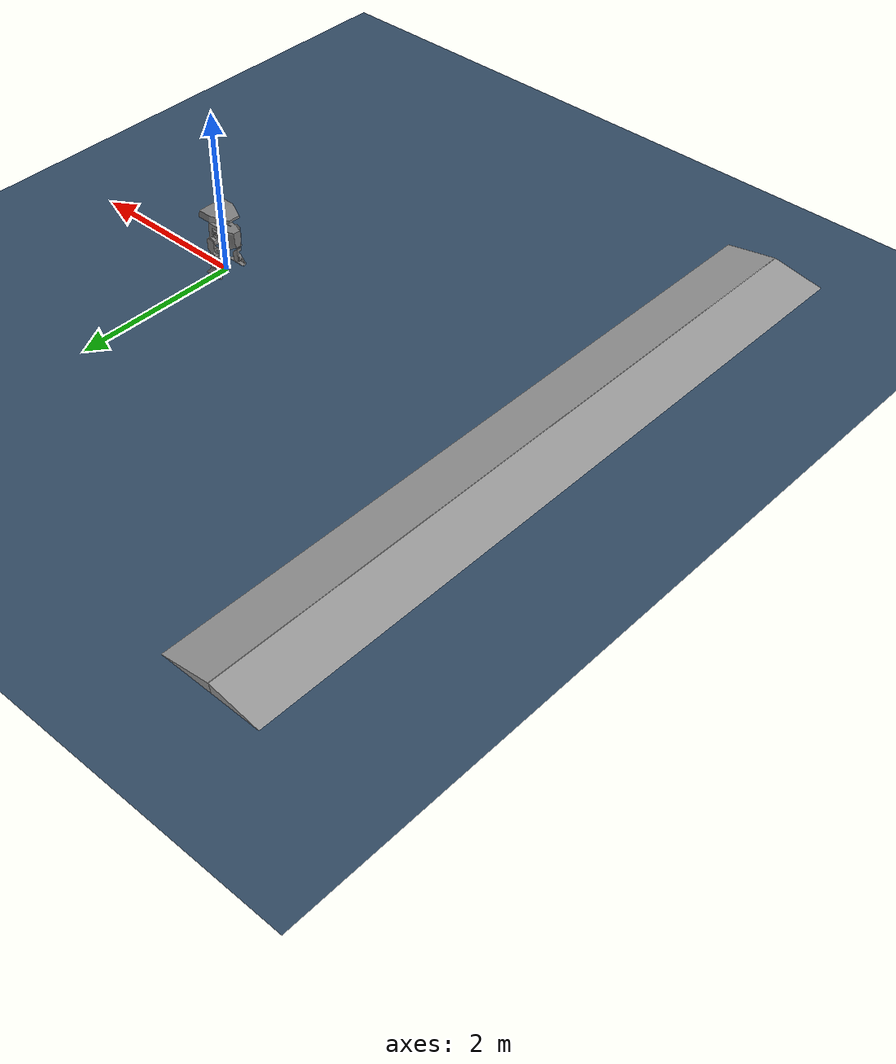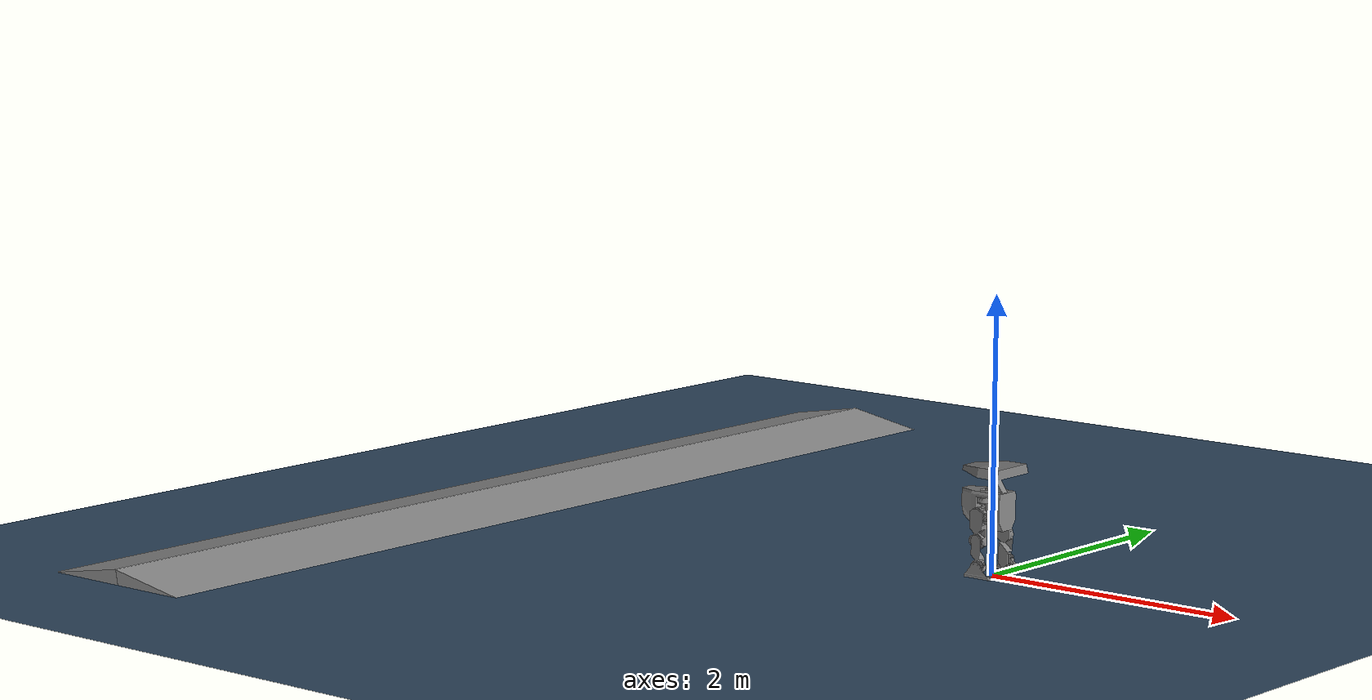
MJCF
<mujoco model="simple_biped">
    <compiler angle="degree"/>

    <option timestep="0.0002"/>

    <asset>
        <mesh name="main_body" file="meshes/main_body.stl" scale="1 1 1"/>
        <mesh name="hip_z_r" file="meshes/hip_z_r.stl" scale="1 1 1"/>
        <mesh name="hip_y_r" file="meshes/hip_y_r.stl" scale="1 1 1"/>
        <mesh name="thigh_r" file="meshes/thigh_r.stl" scale="1 1 1"/>
        <mesh name="shin_r" file="meshes/shin_r.stl" scale="1 1 1"/>
        <mesh name="foot_r" file="meshes/foot_r.stl" scale="1 1 1"/>
        <mesh name="hip_z_l" file="meshes/hip_z_l.stl" scale="1 1 1"/>
        <mesh name="hip_y_l" file="meshes/hip_y_l.stl" scale="1 1 1"/>
        <mesh name="thigh_l" file="meshes/thigh_l.stl" scale="1 1 1"/>
        <mesh name="shin_l" file="meshes/shin_l.stl" scale="1 1 1"/>
        <mesh name="foot_l" file="meshes/foot_l.stl" scale="1 1 1"/>
    </asset>

    <worldbody>
        <light name="sun" directional="true" dir="-1 -1 -2" castshadow="true"/>

        <!-- Ground plane -->
        <geom name="ground" type="plane" size="50 50 0.1" rgba="0.2 0.3 0.4 1"/>
        <!-- Obstacle box -->
        <geom
            name="obstacle_box"
            type="box"
            pos="-4 0 -0.06"
            size="0.5 4.2 0.075"
            rgba="0.6 0.6 0.6 1"
            euler="0 10 0"/>

        <geom
            name="obstacle_box_2"
            type="box"
            pos="-4.95 0 -0.06"
            size="0.5 4.2 0.075"
            rgba="0.6 0.6 0.6 1"
            euler="0 -10 0"/>

        <!-- Torso -->
        <body name="torso" pos="0 0 0.5">
            <!-- visual -->
            <geom type="mesh" mesh="main_body" mass="0" contype="0" conaffinity="0" euler="-0 0 -90"/>
            <geom type="box" size="0.2 0.11 0.15" pos="-0.05 0 0.0" mass="8" rgba="0.8 0.2 0.2 0.0"/>
            <geom type="box" size="0.17 0.11 0.05" pos="-0.0 0 0.25" mass="0" rgba="0.8 0.2 0.2 0.0"/>
            <joint type="free"/>

            <!-- Right leg -->
            <body name="right_hip_z" pos="-0.014 -0.08 0.045">
                <joint name="right_hip_z_j" type="hinge" axis="0 0 1" range="-20 20"/>
                <geom type="mesh" mesh="hip_z_r" mass="0" contype="0" conaffinity="0" euler="-0 0 -90"/>
                <geom type="capsule" size="0.07 0.025" mass="0.6" rgba="0.2 0.2 0.8 0.0" pos="0 0.0 -0.05"  euler="-0 0 0" contype="0" conaffinity="0"/>
                <body name="right_hip_y" pos="0 -0.00 -0.08">
                    <joint name="right_hip_y_j" type="hinge" axis="1 0 0" range="-20 20"/>
                    <geom type="mesh" mesh="hip_y_r" mass="0" contype="0" conaffinity="0" pos="-0.035 -0.0 0.0"  euler="-0 0 -90"/>
                    <geom type="capsule" size="0.07 0.025" mass="0.6" rgba="0.2 0.2 0.8 0.0" pos="0 -0.05 0.0"  euler="90 0 0" contype="0" conaffinity="0"/>
                    <body name="right_thigh" pos="0.005 -0.08 -0.0">
                        <joint name="right_hip" type="hinge" axis="0 1 0" range="-60 120"/>
                        <geom type="mesh" mesh="thigh_r" mass="0" contype="0" conaffinity="0" pos="-0.0 -0.022 0.0"  euler="-0 -50 -90"/>
                        <geom type="capsule" size="0.07 0.07" mass="0.8" rgba="0.2 0.2 0.8 0.0" pos="0 0 -0.11" contype="0" conaffinity="0"/>
                        <!-- Right shin -->
                        <body name="right_shin" pos="0 0 -0.19">
                            <joint name="right_knee" type="hinge" axis="0 1 0" range="-120 -5"/>
                            <geom type="mesh" mesh="shin_r" mass="0" contype="0" conaffinity="0" pos="-0.0 -0.022 0.0"  euler="-0 52 -90"/>
                            <geom name="right_shin_geom" type="capsule" size="0.07 0.07" mass="0.8" rgba="0.2 0.2 0.8 0.0" pos="0 0 -0.12" contype="0" conaffinity="0"/>
                            <body name="right_foot" pos="0 0 -0.19">
                                <joint name="right_foot_j" type="hinge" axis="0 1 0" range="-60 60"/>
                                <geom type="mesh" mesh="foot_r" mass="0" contype="0" conaffinity="0" pos="-0.0 -0.022 0.0"  euler="-0 0 -90"/>
                                <geom name="right_foot_geom" type="capsule" size="0.04 0.08" mass="0.1" rgba="0.2 0.2 0.8 0.0" pos="0.01 -0.010 -0.037" euler="-0 90 0"/>
                            </body>
                        </body>
                    </body>
                </body>
            </body>
            <!-- Left leg -->
            <!-- Left leg -->
            <body name="left_hip_z" pos="-0.014 0.08 0.045">
                <joint name="left_hip_z_j" type="hinge" axis="0 0 1" range="-20 20"/>
                <geom type="mesh" mesh="hip_z_l" mass="0" contype="0" conaffinity="0" euler="-0 0 -90"/>
                <geom type="capsule" size="0.07 0.025" mass="0.6" rgba="0.2 0.8 0.2 0.0"
                    pos="0 0.0 -0.05" contype="0" conaffinity="0"/>

                <body name="left_hip_y" pos="0 0.00 -0.08">
                    <joint name="left_hip_y_j" type="hinge" axis="1 0 0" range="-20 20"/>
                    <geom type="mesh" mesh="hip_y_l" mass="0" contype="0" conaffinity="0"
                        pos="-0.035 0.0 0.0" euler="-0 0 -90"/>
                    <geom type="capsule" size="0.07 0.025" mass="0.6" rgba="0.2 0.8 0.2 0.0"
                        pos="0 0.05 0.0" euler="90 0 0" contype="0" conaffinity="0"/>

                    <body name="left_thigh" pos="0.005 0.08 0.0">
                        <joint name="left_hip" type="hinge" axis="0 1 0" range="-60 120"/>
                        <geom type="mesh" mesh="thigh_l" mass="0" contype="0" conaffinity="0"
                            pos="-0.0 0.022 0.0" euler="-0 -50 -90"/>
                        <geom type="capsule" size="0.07 0.07" mass="0.8" rgba="0.2 0.8 0.2 0.0"
                            pos="0 0 -0.11" contype="0" conaffinity="0"/>

                        <!-- Left shin -->
                        <body name="left_shin" pos="0 0 -0.19">
                            <joint name="left_knee" type="hinge" axis="0 1 0" range="-120 -5"/>
                            <geom type="mesh" mesh="shin_l" mass="0" contype="0" conaffinity="0"
                                pos="-0.0 0.022 0.0" euler="-0 52 -90"/>
                            <geom name="left_shin_geom" type="capsule" size="0.07 0.07" mass="0.8"
                                rgba="0.2 0.8 0.2 0.0" pos="0 0 -0.12" contype="0" conaffinity="0"/>

                            <body name="left_foot" pos="0 0 -0.19">
                                <joint name="left_foot_j" type="hinge" axis="0 1 0" range="-60 60"/>
                                <geom type="mesh" mesh="foot_l" mass="0" contype="0" conaffinity="0"
                                    pos="-0.0 0.022 0.0" euler="-0 0 -90"/>
                                <geom name="left_foot_geom" type="capsule" size="0.04 0.08" mass="0.1"
                                    rgba="0.2 0.8 0.2 0.0" pos="0.01 0.010 -0.037" euler="-0 90 0"/>
                            </body>
                        </body>
                    </body>
                </body>
            </body>
        </body>
    </worldbody>

    <actuator>
        <velocity joint="right_hip_z_j" kv="15"/>
        <velocity joint="right_hip_y_j" kv="20"/>
        <velocity joint="right_hip" kv="20"/>
        <velocity joint="right_knee" kv="15"/>
        <velocity joint="right_foot_j" kv="1"/>

        <velocity joint="left_hip_z_j" kv="15"/>
        <velocity joint="left_hip_y_j" kv="20"/>
        <velocity joint="left_hip" kv="20"/>
        <velocity joint="left_knee" kv="15"/>
        <velocity joint="left_foot_j" kv="1"/>
    </actuator>

</mujoco>
